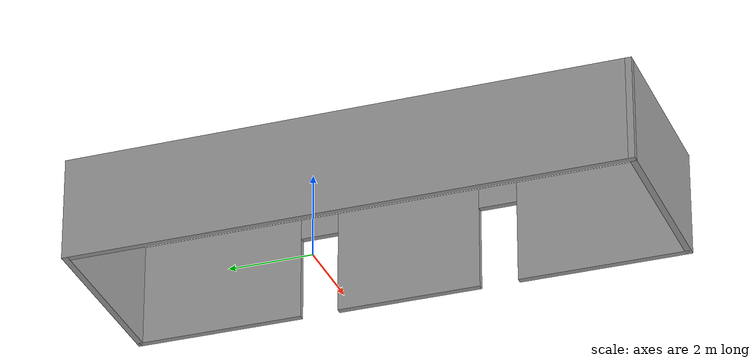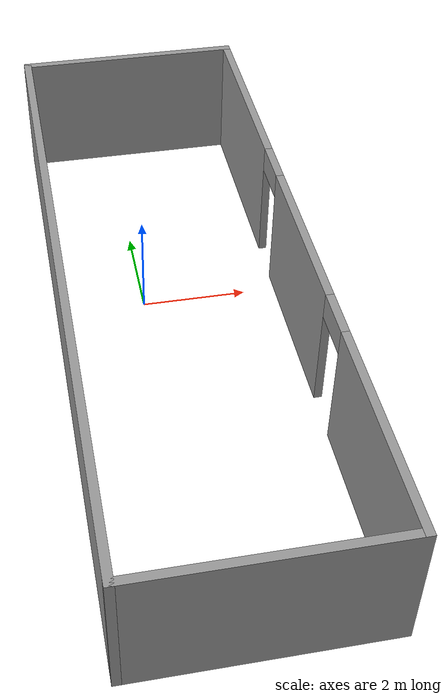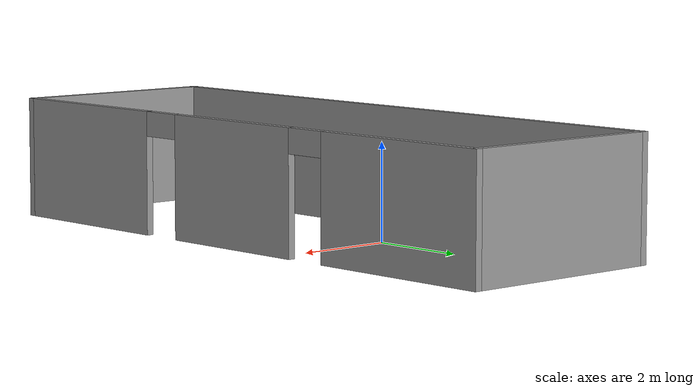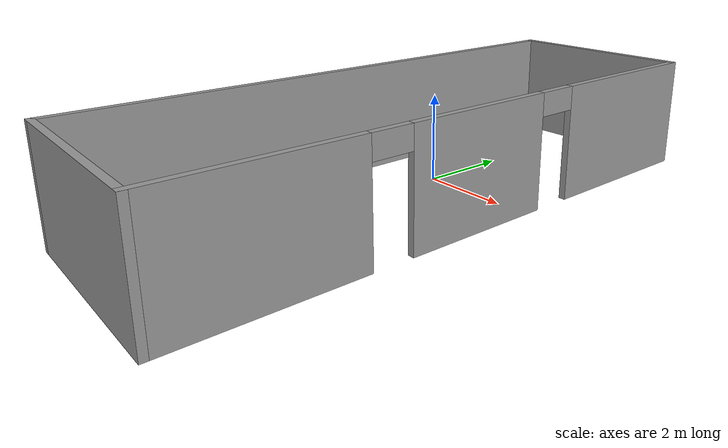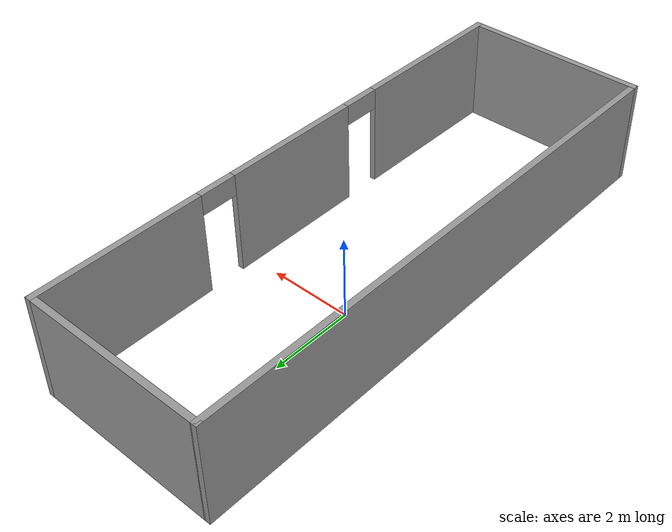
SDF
<?xml version='1.0'?>
<sdf version='1.7'>
  <model name='lab'>
    <pose>0.52 -1.3155 0 0 -0 0</pose>
    <link name='Wall_2'>
      <collision name='Wall_2_Collision'>
        <geometry>
          <box>
            <size>4.5 0.15 2.5</size>
          </box>
        </geometry>
        <pose>0 0 1.25 0 -0 0</pose>
      </collision>
      <visual name='Wall_2_Visual'>
        <pose>0 0 1.25 0 -0 0</pose>
        <geometry>
          <box>
            <size>4.5 0.15 2.5</size>
          </box>
        </geometry>
        <material>
          <script>
            <uri>file://media/materials/scripts/gazebo.material</uri>
            <name>Gazebo/Grey</name>
          </script>
          <ambient>1 1 1 1</ambient>
        </material>
        <meta>
          <layer>0</layer>
        </meta>
      </visual>
      <pose>0 6.55 0 0 -0 0</pose>
    </link>
    <link name='Wall_3'>
      <pose>2.175 0 0 0 -0 -1.5708</pose>
      <visual name='Wall_3_Visual_0'>
        <pose>-4.61072 0 1.25 0 -0 0</pose>
        <geometry>
          <box>
            <size>4.02857 0.15 2.5</size>
          </box>
        </geometry>
        <material>
          <script>
            <uri>file://media/materials/scripts/gazebo.material</uri>
            <name>Gazebo/Grey</name>
          </script>
          <ambient>1 1 1 1</ambient>
        </material>
        <meta>
          <layer>0</layer>
        </meta>
      </visual>
      <collision name='Wall_3_Collision_0'>
        <geometry>
          <box>
            <size>4.02857 0.15 2.5</size>
          </box>
        </geometry>
        <pose>-4.61072 0 1.25 0 -0 0</pose>
      </collision>
      <visual name='Wall_3_Visual_1'>
        <pose>0.004715 0 1.25 0 -0 0</pose>
        <geometry>
          <box>
            <size>3.40229 0.15 2.5</size>
          </box>
        </geometry>
        <material>
          <script>
            <uri>file://media/materials/scripts/gazebo.material</uri>
            <name>Gazebo/Grey</name>
          </script>
          <ambient>1 1 1 1</ambient>
        </material>
        <meta>
          <layer>0</layer>
        </meta>
      </visual>
      <collision name='Wall_3_Collision_1'>
        <geometry>
          <box>
            <size>3.40229 0.15 2.5</size>
          </box>
        </geometry>
        <pose>0.004715 0 1.25 0 -0 0</pose>
      </collision>
      <visual name='Wall_3_Visual_2'>
        <pose>4.61543 0 1.25 0 -0 0</pose>
        <geometry>
          <box>
            <size>4.01914 0.15 2.5</size>
          </box>
        </geometry>
        <material>
          <script>
            <uri>file://media/materials/scripts/gazebo.material</uri>
            <name>Gazebo/Grey</name>
          </script>
          <ambient>1 1 1 1</ambient>
        </material>
        <meta>
          <layer>0</layer>
        </meta>
      </visual>
      <collision name='Wall_3_Collision_2'>
        <geometry>
          <box>
            <size>4.01914 0.15 2.5</size>
          </box>
        </geometry>
        <pose>4.61543 0 1.25 0 -0 0</pose>
      </collision>
      <visual name='Wall_3_Visual_3'>
        <pose>-2.14643 0 2.25 0 -0 0</pose>
        <geometry>
          <box>
            <size>0.9 0.15 0.5</size>
          </box>
        </geometry>
        <material>
          <script>
            <uri>file://media/materials/scripts/gazebo.material</uri>
            <name>Gazebo/Grey</name>
          </script>
          <ambient>1 1 1 1</ambient>
        </material>
        <meta>
          <layer>0</layer>
        </meta>
      </visual>
      <collision name='Wall_3_Collision_3'>
        <geometry>
          <box>
            <size>0.9 0.15 0.5</size>
          </box>
        </geometry>
        <pose>-2.14643 0 2.25 0 -0 0</pose>
      </collision>
      <visual name='Wall_3_Visual_4'>
        <pose>2.15586 0 2.25 0 -0 0</pose>
        <geometry>
          <box>
            <size>0.9 0.15 0.5</size>
          </box>
        </geometry>
        <material>
          <script>
            <uri>file://media/materials/scripts/gazebo.material</uri>
            <name>Gazebo/Grey</name>
          </script>
          <ambient>1 1 1 1</ambient>
        </material>
        <meta>
          <layer>0</layer>
        </meta>
      </visual>
      <collision name='Wall_3_Collision_4'>
        <geometry>
          <box>
            <size>0.9 0.15 0.5</size>
          </box>
        </geometry>
        <pose>2.15586 0 2.25 0 -0 0</pose>
      </collision>
    </link>
    <link name='Wall_4'>
      <collision name='Wall_4_Collision'>
        <geometry>
          <box>
            <size>4.5 0.15 2.5</size>
          </box>
        </geometry>
        <pose>0 0 1.25 0 -0 0</pose>
      </collision>
      <visual name='Wall_4_Visual'>
        <pose>0 0 1.25 0 -0 0</pose>
        <geometry>
          <box>
            <size>4.5 0.15 2.5</size>
          </box>
        </geometry>
        <material>
          <script>
            <uri>file://media/materials/scripts/gazebo.material</uri>
            <name>Gazebo/Grey</name>
          </script>
          <ambient>1 1 1 1</ambient>
        </material>
        <meta>
          <layer>0</layer>
        </meta>
      </visual>
      <pose>0 -6.55 0 0 -0 3.14159</pose>
    </link>
    <link name='Wall_5'>
      <collision name='Wall_5_Collision'>
        <geometry>
          <box>
            <size>13.25 0.15 2.5</size>
          </box>
        </geometry>
        <pose>0 0 1.25 0 -0 0</pose>
      </collision>
      <visual name='Wall_5_Visual'>
        <pose>0 0 1.25 0 -0 0</pose>
        <geometry>
          <box>
            <size>13.25 0.15 2.5</size>
          </box>
        </geometry>
        <material>
          <script>
            <uri>file://media/materials/scripts/gazebo.material</uri>
            <name>Gazebo/Grey</name>
          </script>
          <ambient>1 1 1 1</ambient>
        </material>
        <meta>
          <layer>0</layer>
        </meta>
      </visual>
      <pose>-2.175 0 0 0 -0 1.5708</pose>
    </link>
    <static>1</static>
  </model>
</sdf>
